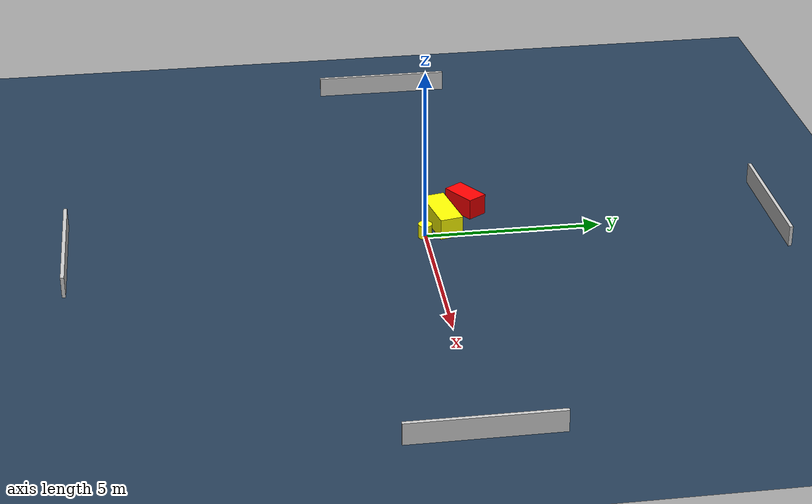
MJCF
<?xml version="1.0" ?>
<mujoco model="generated_environment">
  <option timestep="0.01" integrator="RK4" cone="elliptic"/>
  <default>
    <geom density="1"/>
  </default>
  <asset>
    <texture builtin="gradient" height="3072" name="skybox" rgb1="0.3 0.5 0.7" rgb2="0 0 0" type="skybox" width="512"/>
    <texture builtin="checker" height="300" name="groundplane" rgb1="0.2 0.3 0.4" rgb2="0.1 0.2 0.3" type="2d" width="300"/>
    <material name="groundplane" reflectance="0.2" texrepeat="5 5" texture="groundplane"/>
  </asset>
  <worldbody>
    <light dir="0 0 -1" directional="true" pos="0 0 1.5"/>
    <geom condim="3" friction="0.5 0.005 0.001" material="groundplane" name="floor" pos="0 0 0" size="0 0 0.05" type="plane"/>
    <body name="walls">
      <geom name="wall_1" condim="4" pos="-10.0 0.0 0.3" rgba="0.800000011920929 0.800000011920929 0.800000011920929 1.0" size="0.05 2.0 0.3" type="box"/>
      <geom name="wall_2" condim="4" pos="10.0 0.0 0.3" rgba="0.800000011920929 0.800000011920929 0.800000011920929 1.0" size="0.05 2.0 0.3" type="box"/>
      <geom name="wall_3" condim="4" pos="0.0 -10.0 0.3" rgba="0.800000011920929 0.800000011920929 0.800000011920929 1.0" size="2.0 0.05 0.3" type="box"/>
      <geom name="wall_4" condim="4" pos="0.0 10.0 0.3" rgba="0.800000011920929 0.800000011920929 0.800000011920929 1.0" size="2.0 0.05 0.3" type="box"/>
    </body>
    <body name="robot">
      <joint name="joint_x" type="slide" pos="0 0 0" axis="1 0 0"/>
      <joint name="joint_y" type="slide" pos="0 0 0" axis="0 1 0"/>
      <geom name="robot" type="cylinder" pos="0.0 0.0 0.2" size="0.2 0.2 0.0" mass="5.0" friction="1.0 0.005 0.0001" condim="4" rgba="1.0 1.0 0.0 1.0"/>
    </body>
    <body name="obstacle_1_movable">
      <geom name="obstacle_1_movable" condim="4" pos="-0.5927161603406753 0.5738753248709478 0.3" euler="0 0 11.726098234878592" friction="0.0 0.005 0.001" rgba="1.0 1.0 0.0 1.0" size="0.7899301316785154 0.33299344559741983 0.3" type="box" mass="0.1"/>
      <joint type="free"/>
    </body>
    <body name="obstacle_2_static">
      <geom name="obstacle_2_static" condim="4" pos="-1.4225422721668965 1.3709863372654552 0.3" euler="0 0 123.1056275061885" friction="0.0 0.005 0.001" rgba="1.0 0.0 0.0 1.0" size="0.29529889639034523 0.5232226848515883 0.3" type="box"/>
    </body>
  </worldbody>
  <actuator>
    <motor name="actuator_x" joint="joint_x" gear="1" ctrlrange="-1 1"/>
    <motor name="actuator_y" joint="joint_y" gear="1" ctrlrange="-1 1"/>
  </actuator>
</mujoco>
